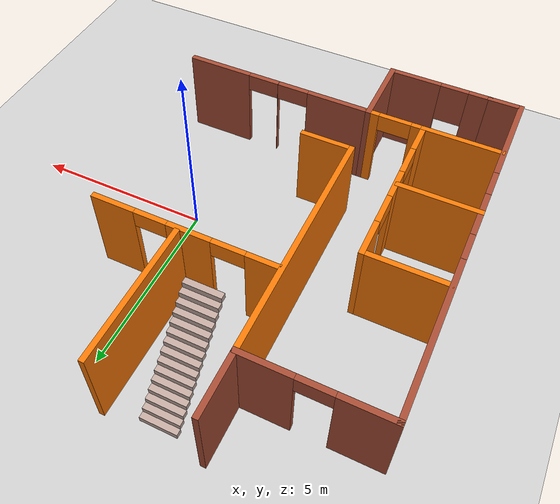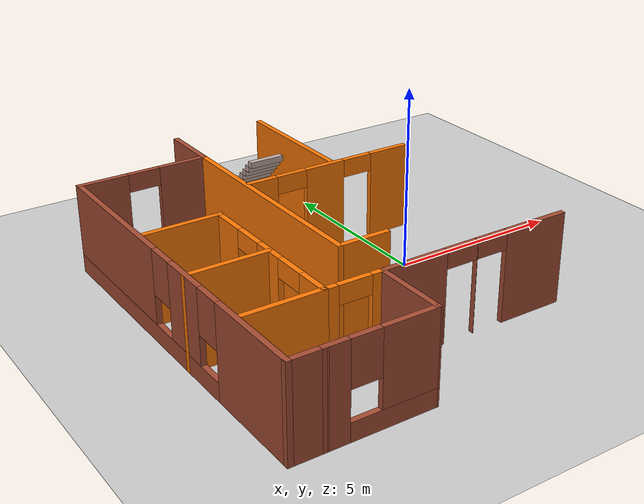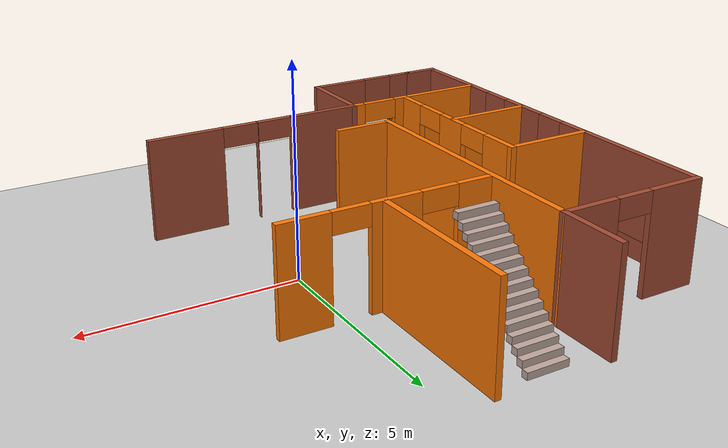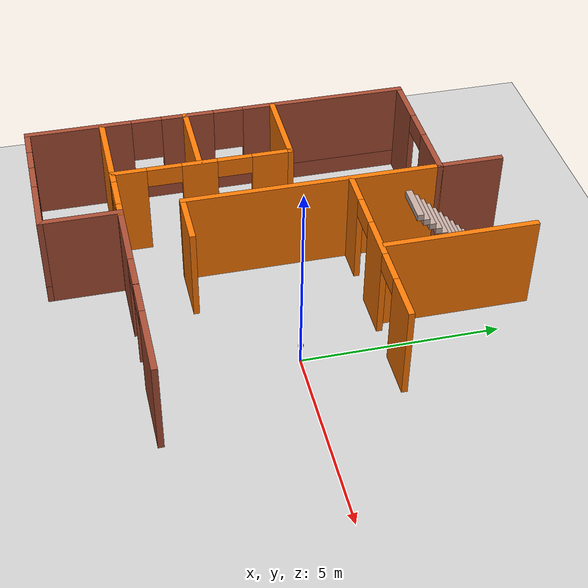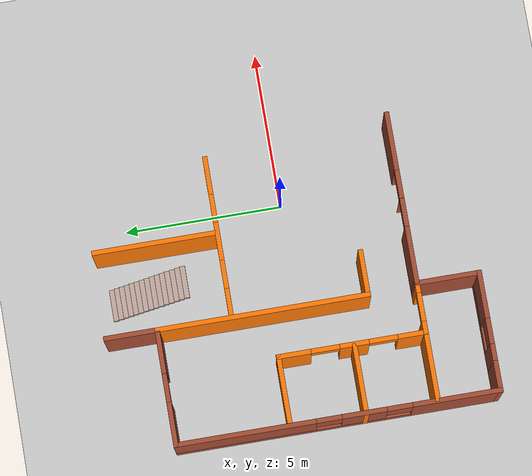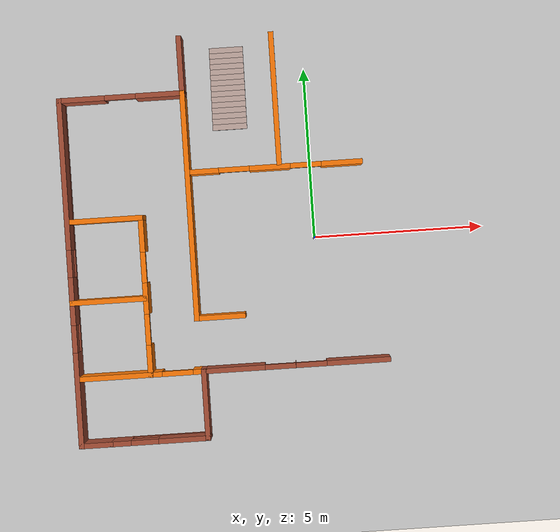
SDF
<sdf version="1.6">
 <world name="default">
  <include>
   <uri>file:///home/ubuntu/ros_ws/src/robot_sim/gazebo/kris_robot</uri>
   <name>kris_robot</name>
   <pose>0 0 0.5 0 -0 0</pose>
  </include>
  <model name="ground_plane">
   <static>1</static>
   <link name="link">
    <collision name="collision">
     <geometry><plane><normal>0 0 1</normal><size>100 100</size></plane></geometry>
     <surface><friction><ode><mu>100</mu><mu2>50</mu2></ode></friction></surface>
    </collision>
    <visual name="visual">
     <cast_shadows>0</cast_shadows>
     <geometry><plane><normal>0 0 1</normal><size>100 100</size></plane></geometry>
     <material>
      <script><uri>file://media/materials/scripts/gazebo.material</uri><name>Gazebo/Grey</name></script>
     </material>
    </visual>
   </link>
  </model>
  <model name="office">
   <pose>0.904802 0.213699 0 0 -0 0</pose>
   <link name="Stairs_0">
    <visual name="Stairs_0_Visual_0">
     <pose>-3.16704 5.51815 0.083333 0 -0 0</pose>
     <geometry><box><size>1 0.168037 0.166667</size></box></geometry>
     <material>
      <script><uri>file://media/materials/scripts/gazebo.material</uri><name>Gazebo/Grey</name></script>
      <ambient>0.760784 0.662745 0.627451 1</ambient>
     </material>
     <meta><layer>0</layer></meta>
    </visual>
    <collision name="Stairs_0_Collision_0">
     <geometry><box><size>1 0.168037 0.166667</size></box></geometry>
     <pose>-3.16704 5.51815 0.083333 0 -0 0</pose>
    </collision>
    <visual name="Stairs_0_Visual_1">
     <pose>-3.16704 5.35011 0.25 0 -0 0</pose>
     <geometry><box><size>1 0.168037 0.166667</size></box></geometry>
     <material>
      <script><uri>file://media/materials/scripts/gazebo.material</uri><name>Gazebo/Grey</name></script>
      <ambient>0.760784 0.662745 0.627451 1</ambient>
     </material>
     <meta><layer>0</layer></meta>
    </visual>
    <collision name="Stairs_0_Collision_1">
     <geometry><box><size>1 0.168037 0.166667</size></box></geometry>
     <pose>-3.16704 5.35011 0.25 0 -0 0</pose>
    </collision>
    <visual name="Stairs_0_Visual_2">
     <pose>-3.16704 5.18207 0.416667 0 -0 0</pose>
     <geometry><box><size>1 0.168037 0.166667</size></box></geometry>
     <material>
      <script><uri>file://media/materials/scripts/gazebo.material</uri><name>Gazebo/Grey</name></script>
      <ambient>0.760784 0.662745 0.627451 1</ambient>
     </material>
     <meta><layer>0</layer></meta>
    </visual>
    <collision name="Stairs_0_Collision_2">
     <geometry><box><size>1 0.168037 0.166667</size></box></geometry>
     <pose>-3.16704 5.18207 0.416667 0 -0 0</pose>
    </collision>
    <visual name="Stairs_0_Visual_3">
     <pose>-3.16704 5.01404 0.583333 0 -0 0</pose>
     <geometry><box><size>1 0.168037 0.166667</size></box></geometry>
     <material>
      <script><uri>file://media/materials/scripts/gazebo.material</uri><name>Gazebo/Grey</name></script>
      <ambient>0.760784 0.662745 0.627451 1</ambient>
     </material>
     <meta><layer>0</layer></meta>
    </visual>
    <collision name="Stairs_0_Collision_3">
     <geometry><box><size>1 0.168037 0.166667</size></box></geometry>
     <pose>-3.16704 5.01404 0.583333 0 -0 0</pose>
    </collision>
    <visual name="Stairs_0_Visual_4">
     <pose>-3.16704 4.846 0.75 0 -0 0</pose>
     <geometry><box><size>1 0.168037 0.166667</size></box></geometry>
     <material>
      <script><uri>file://media/materials/scripts/gazebo.material</uri><name>Gazebo/Grey</name></script>
      <ambient>0.760784 0.662745 0.627451 1</ambient>
     </material>
     <meta><layer>0</layer></meta>
    </visual>
    <collision name="Stairs_0_Collision_4">
     <geometry><box><size>1 0.168037 0.166667</size></box></geometry>
     <pose>-3.16704 4.846 0.75 0 -0 0</pose>
    </collision>
    <visual name="Stairs_0_Visual_5">
     <pose>-3.16704 4.67796 0.916667 0 -0 0</pose>
     <geometry><box><size>1 0.168037 0.166667</size></box></geometry>
     <material>
      <script><uri>file://media/materials/scripts/gazebo.material</uri><name>Gazebo/Grey</name></script>
      <ambient>0.760784 0.662745 0.627451 1</ambient>
     </material>
     <meta><layer>0</layer></meta>
    </visual>
    <collision name="Stairs_0_Collision_5">
     <geometry><box><size>1 0.168037 0.166667</size></box></geometry>
     <pose>-3.16704 4.67796 0.916667 0 -0 0</pose>
    </collision>
    <visual name="Stairs_0_Visual_6">
     <pose>-3.16704 4.50992 1.08333 0 -0 0</pose>
     <geometry><box><size>1 0.168037 0.166667</size></box></geometry>
     <material>
      <script><uri>file://media/materials/scripts/gazebo.material</uri><name>Gazebo/Grey</name></script>
      <ambient>0.760784 0.662745 0.627451 1</ambient>
     </material>
     <meta><layer>0</layer></meta>
    </visual>
    <collision name="Stairs_0_Collision_6">
     <geometry><box><size>1 0.168037 0.166667</size></box></geometry>
     <pose>-3.16704 4.50992 1.08333 0 -0 0</pose>
    </collision>
    <visual name="Stairs_0_Visual_7">
     <pose>-3.16704 4.34189 1.25 0 -0 0</pose>
     <geometry><box><size>1 0.168037 0.166667</size></box></geometry>
     <material>
      <script><uri>file://media/materials/scripts/gazebo.material</uri><name>Gazebo/Grey</name></script>
      <ambient>0.760784 0.662745 0.627451 1</ambient>
     </material>
     <meta><layer>0</layer></meta>
    </visual>
    <collision name="Stairs_0_Collision_7">
     <geometry><box><size>1 0.168037 0.166667</size></box></geometry>
     <pose>-3.16704 4.34189 1.25 0 -0 0</pose>
    </collision>
    <visual name="Stairs_0_Visual_8">
     <pose>-3.16704 4.17385 1.41667 0 -0 0</pose>
     <geometry><box><size>1 0.168037 0.166667</size></box></geometry>
     <material>
      <script><uri>file://media/materials/scripts/gazebo.material</uri><name>Gazebo/Grey</name></script>
      <ambient>0.760784 0.662745 0.627451 1</ambient>
     </material>
     <meta><layer>0</layer></meta>
    </visual>
    <collision name="Stairs_0_Collision_8">
     <geometry><box><size>1 0.168037 0.166667</size></box></geometry>
     <pose>-3.16704 4.17385 1.41667 0 -0 0</pose>
    </collision>
    <visual name="Stairs_0_Visual_9">
     <pose>-3.16704 4.00581 1.58333 0 -0 0</pose>
     <geometry><box><size>1 0.168037 0.166667</size></box></geometry>
     <material>
      <script><uri>file://media/materials/scripts/gazebo.material</uri><name>Gazebo/Grey</name></script>
      <ambient>0.760784 0.662745 0.627451 1</ambient>
     </material>
     <meta><layer>0</layer></meta>
    </visual>
    <collision name="Stairs_0_Collision_9">
     <geometry><box><size>1 0.168037 0.166667</size></box></geometry>
     <pose>-3.16704 4.00581 1.58333 0 -0 0</pose>
    </collision>
    <visual name="Stairs_0_Visual_10">
     <pose>-3.16704 3.83778 1.75 0 -0 0</pose>
     <geometry><box><size>1 0.168037 0.166667</size></box></geometry>
     <material>
      <script><uri>file://media/materials/scripts/gazebo.material</uri><name>Gazebo/Grey</name></script>
      <ambient>0.760784 0.662745 0.627451 1</ambient>
     </material>
     <meta><layer>0</layer></meta>
    </visual>
    <collision name="Stairs_0_Collision_10">
     <geometry><box><size>1 0.168037 0.166667</size></box></geometry>
     <pose>-3.16704 3.83778 1.75 0 -0 0</pose>
    </collision>
    <visual name="Stairs_0_Visual_11">
     <pose>-3.16704 3.66974 1.91667 0 -0 0</pose>
     <geometry><box><size>1 0.168037 0.166667</size></box></geometry>
     <material>
      <script><uri>file://media/materials/scripts/gazebo.material</uri><name>Gazebo/Grey</name></script>
      <ambient>0.760784 0.662745 0.627451 1</ambient>
     </material>
     <meta><layer>0</layer></meta>
    </visual>
    <collision name="Stairs_0_Collision_11">
     <geometry><box><size>1 0.168037 0.166667</size></box></geometry>
     <pose>-3.16704 3.66974 1.91667 0 -0 0</pose>
    </collision>
    <visual name="Stairs_0_Visual_12">
     <pose>-3.16704 3.5017 2.08333 0 -0 0</pose>
     <geometry><box><size>1 0.168037 0.166667</size></box></geometry>
     <material>
      <script><uri>file://media/materials/scripts/gazebo.material</uri><name>Gazebo/Grey</name></script>
      <ambient>0.760784 0.662745 0.627451 1</ambient>
     </material>
     <meta><layer>0</layer></meta>
    </visual>
    <collision name="Stairs_0_Collision_12">
     <geometry><box><size>1 0.168037 0.166667</size></box></geometry>
     <pose>-3.16704 3.5017 2.08333 0 -0 0</pose>
    </collision>
    <visual name="Stairs_0_Visual_13">
     <pose>-3.16704 3.33366 2.25 0 -0 0</pose>
     <geometry><box><size>1 0.168037 0.166667</size></box></geometry>
     <material>
      <script><uri>file://media/materials/scripts/gazebo.material</uri><name>Gazebo/Grey</name></script>
      <ambient>0.760784 0.662745 0.627451 1</ambient>
     </material>
     <meta><layer>0</layer></meta>
    </visual>
    <collision name="Stairs_0_Collision_13">
     <geometry><box><size>1 0.168037 0.166667</size></box></geometry>
     <pose>-3.16704 3.33366 2.25 0 -0 0</pose>
    </collision>
    <visual name="Stairs_0_Visual_14">
     <pose>-3.16704 3.16563 2.41667 0 -0 0</pose>
     <geometry><box><size>1 0.168037 0.166667</size></box></geometry>
     <material>
      <script><uri>file://media/materials/scripts/gazebo.material</uri><name>Gazebo/Grey</name></script>
      <ambient>0.760784 0.662745 0.627451 1</ambient>
     </material>
     <meta><layer>0</layer></meta>
    </visual>
    <collision name="Stairs_0_Collision_14">
     <geometry><box><size>1 0.168037 0.166667</size></box></geometry>
     <pose>-3.16704 3.16563 2.41667 0 -0 0</pose>
    </collision>
   </link>
   <link name="Wall_10">
    <collision name="Wall_10_Collision">
     <geometry><box><size>1 0.15 2.5</size></box></geometry>
     <pose>0 0 1.25 0 -0 0</pose>
    </collision>
    <visual name="Wall_10_Visual">
     <pose>0 0 1.25 0 -0 0</pose>
     <geometry><box><size>1 0.15 2.5</size></box></geometry>
     <material>
      <script><uri>file://media/materials/scripts/gazebo.material</uri><name>Gazebo/Bricks</name></script>
      <ambient>1 1 1 1</ambient>
     </material>
     <meta><layer>0</layer></meta>
    </visual>
    <pose>-7.67457 -5.85749 0 0 -0 3.14159</pose>
   </link>
   <link name="Wall_11">
    <pose>-8.09957 -0.807493 0 0 -0 1.5708</pose>
    <visual name="Wall_11_Visual_0">
     <pose>-3.7208 0 1.25 0 -0 0</pose>
     <geometry><box><size>2.8084 0.15 2.5</size></box></geometry>
     <material>
      <script><uri>file://media/materials/scripts/gazebo.material</uri><name>Gazebo/Bricks</name></script>
      <ambient>1 1 1 1</ambient>
     </material>
     <meta><layer>0</layer></meta>
    </visual>
    <collision name="Wall_11_Collision_0">
     <geometry><box><size>2.8084 0.15 2.5</size></box></geometry>
     <pose>-3.7208 0 1.25 0 -0 0</pose>
    </collision>
    <visual name="Wall_11_Visual_1">
     <pose>1.4042 0 0.25 0 -0 0</pose>
     <geometry><box><size>7.4416 0.15 0.5</size></box></geometry>
     <material>
      <script><uri>file://media/materials/scripts/gazebo.material</uri><name>Gazebo/Bricks</name></script>
      <ambient>1 1 1 1</ambient>
     </material>
     <meta><layer>0</layer></meta>
    </visual>
    <collision name="Wall_11_Collision_1">
     <geometry><box><size>7.4416 0.15 0.5</size></box></geometry>
     <pose>1.4042 0 0.25 0 -0 0</pose>
    </collision>
    <visual name="Wall_11_Visual_2">
     <pose>-0.81473 0 1.5 0 -0 0</pose>
     <geometry><box><size>1.40375 0.15 2</size></box></geometry>
     <material>
      <script><uri>file://media/materials/scripts/gazebo.material</uri><name>Gazebo/Bricks</name></script>
      <ambient>1 1 1 1</ambient>
     </material>
     <meta><layer>0</layer></meta>
    </visual>
    <collision name="Wall_11_Collision_2">
     <geometry><box><size>1.40375 0.15 2</size></box></geometry>
     <pose>-0.81473 0 1.5 0 -0 0</pose>
    </collision>
    <visual name="Wall_11_Visual_3">
     <pose>2.90607 0 1.5 0 -0 0</pose>
     <geometry><box><size>4.43786 0.15 2</size></box></geometry>
     <material>
      <script><uri>file://media/materials/scripts/gazebo.material</uri><name>Gazebo/Bricks</name></script>
      <ambient>1 1 1 1</ambient>
     </material>
     <meta><layer>0</layer></meta>
    </visual>
    <collision name="Wall_11_Collision_3">
     <geometry><box><size>4.43786 0.15 2</size></box></geometry>
     <pose>2.90607 0 1.5 0 -0 0</pose>
    </collision>
    <visual name="Wall_11_Visual_4">
     <pose>-1.9166 0 1.9 0 -0 0</pose>
     <geometry><box><size>0.8 0.15 1.2</size></box></geometry>
     <material>
      <script><uri>file://media/materials/scripts/gazebo.material</uri><name>Gazebo/Bricks</name></script>
      <ambient>1 1 1 1</ambient>
     </material>
     <meta><layer>0</layer></meta>
    </visual>
    <collision name="Wall_11_Collision_4">
     <geometry><box><size>0.8 0.15 1.2</size></box></geometry>
     <pose>-1.9166 0 1.9 0 -0 0</pose>
    </collision>
    <visual name="Wall_11_Visual_5">
     <pose>0.287144 0 1.9 0 -0 0</pose>
     <geometry><box><size>0.8 0.15 1.2</size></box></geometry>
     <material>
      <script><uri>file://media/materials/scripts/gazebo.material</uri><name>Gazebo/Bricks</name></script>
      <ambient>1 1 1 1</ambient>
     </material>
     <meta><layer>0</layer></meta>
    </visual>
    <collision name="Wall_11_Collision_5">
     <geometry><box><size>0.8 0.15 1.2</size></box></geometry>
     <pose>0.287144 0 1.9 0 -0 0</pose>
    </collision>
   </link>
   <link name="Wall_12">
    <pose>-6.29957 4.24251 0 0 -0 0</pose>
    <visual name="Wall_12_Visual_0">
     <pose>-1.17034 0 1.25 0 -0 0</pose>
     <geometry><box><size>1.40932 0.15 2.5</size></box></geometry>
     <material>
      <script><uri>file://media/materials/scripts/gazebo.material</uri><name>Gazebo/Bricks</name></script>
      <ambient>1 1 1 1</ambient>
     </material>
     <meta><layer>0</layer></meta>
    </visual>
    <collision name="Wall_12_Collision_0">
     <geometry><box><size>1.40932 0.15 2.5</size></box></geometry>
     <pose>-1.17034 0 1.25 0 -0 0</pose>
    </collision>
    <visual name="Wall_12_Visual_1">
     <pose>1.15466 0 1.25 0 -0 0</pose>
     <geometry><box><size>1.44068 0.15 2.5</size></box></geometry>
     <material>
      <script><uri>file://media/materials/scripts/gazebo.material</uri><name>Gazebo/Bricks</name></script>
      <ambient>1 1 1 1</ambient>
     </material>
     <meta><layer>0</layer></meta>
    </visual>
    <collision name="Wall_12_Collision_1">
     <geometry><box><size>1.44068 0.15 2.5</size></box></geometry>
     <pose>1.15466 0 1.25 0 -0 0</pose>
    </collision>
    <visual name="Wall_12_Visual_2">
     <pose>-0.015683 0 2.25 0 -0 0</pose>
     <geometry><box><size>0.9 0.15 0.5</size></box></geometry>
     <material>
      <script><uri>file://media/materials/scripts/gazebo.material</uri><name>Gazebo/Bricks</name></script>
      <ambient>1 1 1 1</ambient>
     </material>
     <meta><layer>0</layer></meta>
    </visual>
    <collision name="Wall_12_Collision_2">
     <geometry><box><size>0.9 0.15 0.5</size></box></geometry>
     <pose>-0.015683 0 2.25 0 -0 0</pose>
    </collision>
   </link>
   <link name="Wall_13">
    <collision name="Wall_13_Collision">
     <geometry><box><size>1.75 0.15 2.5</size></box></geometry>
     <pose>0 0 1.25 0 -0 0</pose>
    </collision>
    <visual name="Wall_13_Visual">
     <pose>0 0 1.25 0 -0 0</pose>
     <geometry><box><size>1.75 0.15 2.5</size></box></geometry>
     <material>
      <script><uri>file://media/materials/scripts/gazebo.material</uri><name>Gazebo/Bricks</name></script>
      <ambient>1 1 1 1</ambient>
     </material>
     <meta><layer>0</layer></meta>
    </visual>
    <pose>-4.49957 5.04251 0 0 -0 1.5708</pose>
   </link>
   <link name="Wall_23">
    <pose>-1.67457 -3.90749 0 0 -0 3.14159</pose>
    <visual name="Wall_23_Visual_0">
     <pose>-1.81572 0 1.25 0 -0 0</pose>
     <geometry><box><size>1.86857 0.15 2.5</size></box></geometry>
     <material>
      <script><uri>file://media/materials/scripts/gazebo.material</uri><name>Gazebo/Bricks</name></script>
      <ambient>1 1 1 1</ambient>
     </material>
     <meta><layer>0</layer></meta>
    </visual>
    <collision name="Wall_23_Collision_0">
     <geometry><box><size>1.86857 0.15 2.5</size></box></geometry>
     <pose>-1.81572 0 1.25 0 -0 0</pose>
    </collision>
    <visual name="Wall_23_Visual_1">
     <pose>0.023306 0 1.25 0 -0 0</pose>
     <geometry><box><size>0.009483 0.15 2.5</size></box></geometry>
     <material>
      <script><uri>file://media/materials/scripts/gazebo.material</uri><name>Gazebo/Bricks</name></script>
      <ambient>1 1 1 1</ambient>
     </material>
     <meta><layer>0</layer></meta>
    </visual>
    <collision name="Wall_23_Collision_1">
     <geometry><box><size>0.009483 0.15 2.5</size></box></geometry>
     <pose>0.023306 0 1.25 0 -0 0</pose>
    </collision>
    <visual name="Wall_23_Visual_2">
     <pose>1.83902 0 1.25 0 -0 0</pose>
     <geometry><box><size>1.82195 0.15 2.5</size></box></geometry>
     <material>
      <script><uri>file://media/materials/scripts/gazebo.material</uri><name>Gazebo/Bricks</name></script>
      <ambient>1 1 1 1</ambient>
     </material>
     <meta><layer>0</layer></meta>
    </visual>
    <collision name="Wall_23_Collision_2">
     <geometry><box><size>1.82195 0.15 2.5</size></box></geometry>
     <pose>1.83902 0 1.25 0 -0 0</pose>
    </collision>
    <visual name="Wall_23_Visual_3">
     <pose>-0.431435 0 2.25 0 -0 0</pose>
     <geometry><box><size>0.9 0.15 0.5</size></box></geometry>
     <material>
      <script><uri>file://media/materials/scripts/gazebo.material</uri><name>Gazebo/Bricks</name></script>
      <ambient>1 1 1 1</ambient>
     </material>
     <meta><layer>0</layer></meta>
    </visual>
    <collision name="Wall_23_Collision_3">
     <geometry><box><size>0.9 0.15 0.5</size></box></geometry>
     <pose>-0.431435 0 2.25 0 -0 0</pose>
    </collision>
    <visual name="Wall_23_Visual_4">
     <pose>0.478048 0 2.25 0 -0 0</pose>
     <geometry><box><size>0.9 0.15 0.5</size></box></geometry>
     <material>
      <script><uri>file://media/materials/scripts/gazebo.material</uri><name>Gazebo/Bricks</name></script>
      <ambient>1 1 1 1</ambient>
     </material>
     <meta><layer>0</layer></meta>
    </visual>
    <collision name="Wall_23_Collision_4">
     <geometry><box><size>0.9 0.15 0.5</size></box></geometry>
     <pose>0.478048 0 2.25 0 -0 0</pose>
    </collision>
   </link>
   <link name="Wall_25">
    <pose>-5.14957 -3.90749 0 0 -0 3.14159</pose>
    <visual name="Wall_25_Visual_0">
     <pose>-0.656831 0 1.25 0 -0 0</pose>
     <geometry><box><size>0.436339 0.15 2.5</size></box></geometry>
     <material>
      <script><uri>file://media/materials/scripts/gazebo.material</uri><name>Gazebo/Grey</name></script>
      <ambient>0.996078 0.47451 0.0196078 1</ambient>
     </material>
     <meta><layer>0</layer></meta>
    </visual>
    <collision name="Wall_25_Collision_0">
     <geometry><box><size>0.436339 0.15 2.5</size></box></geometry>
     <pose>-0.656831 0 1.25 0 -0 0</pose>
    </collision>
    <visual name="Wall_25_Visual_1">
     <pose>0.668169 0 1.25 0 -0 0</pose>
     <geometry><box><size>0.413661 0.15 2.5</size></box></geometry>
     <material>
      <script><uri>file://media/materials/scripts/gazebo.material</uri><name>Gazebo/Grey</name></script>
      <ambient>0.996078 0.47451 0.0196078 1</ambient>
     </material>
     <meta><layer>0</layer></meta>
    </visual>
    <collision name="Wall_25_Collision_1">
     <geometry><box><size>0.413661 0.15 2.5</size></box></geometry>
     <pose>0.668169 0 1.25 0 -0 0</pose>
    </collision>
    <visual name="Wall_25_Visual_2">
     <pose>0.011339 0 2.25 0 -0 0</pose>
     <geometry><box><size>0.9 0.15 0.5</size></box></geometry>
     <material>
      <script><uri>file://media/materials/scripts/gazebo.material</uri><name>Gazebo/Grey</name></script>
      <ambient>0.996078 0.47451 0.0196078 1</ambient>
     </material>
     <meta><layer>0</layer></meta>
    </visual>
    <collision name="Wall_25_Collision_2">
     <geometry><box><size>0.9 0.15 0.5</size></box></geometry>
     <pose>0.011339 0 2.25 0 -0 0</pose>
    </collision>
   </link>
   <link name="Wall_26">
    <pose>-5.94957 -1.60749 0 0 -0 1.5708</pose>
    <visual name="Wall_26_Visual_0">
     <pose>-1.90084 0 1.25 0 -0 0</pose>
     <geometry><box><size>0.948317 0.15 2.5</size></box></geometry>
     <material>
      <script><uri>file://media/materials/scripts/gazebo.material</uri><name>Gazebo/Grey</name></script>
      <ambient>0.996078 0.47451 0.0196078 1</ambient>
     </material>
     <meta><layer>0</layer></meta>
    </visual>
    <collision name="Wall_26_Collision_0">
     <geometry><box><size>0.948317 0.15 2.5</size></box></geometry>
     <pose>-1.90084 0 1.25 0 -0 0</pose>
    </collision>
    <visual name="Wall_26_Visual_1">
     <pose>-0.0672 0 1.25 0 -0 0</pose>
     <geometry><box><size>0.918967 0.15 2.5</size></box></geometry>
     <material>
      <script><uri>file://media/materials/scripts/gazebo.material</uri><name>Gazebo/Grey</name></script>
      <ambient>0.996078 0.47451 0.0196078 1</ambient>
     </material>
     <meta><layer>0</layer></meta>
    </visual>
    <collision name="Wall_26_Collision_1">
     <geometry><box><size>0.918967 0.15 2.5</size></box></geometry>
     <pose>-0.0672 0 1.25 0 -0 0</pose>
    </collision>
    <visual name="Wall_26_Visual_2">
     <pose>1.83364 0 1.25 0 -0 0</pose>
     <geometry><box><size>1.08272 0.15 2.5</size></box></geometry>
     <material>
      <script><uri>file://media/materials/scripts/gazebo.material</uri><name>Gazebo/Grey</name></script>
      <ambient>0.996078 0.47451 0.0196078 1</ambient>
     </material>
     <meta><layer>0</layer></meta>
    </visual>
    <collision name="Wall_26_Collision_2">
     <geometry><box><size>1.08272 0.15 2.5</size></box></geometry>
     <pose>1.83364 0 1.25 0 -0 0</pose>
    </collision>
    <visual name="Wall_26_Visual_3">
     <pose>-0.976683 0 2.25 0 -0 0</pose>
     <geometry><box><size>0.9 0.15 0.5</size></box></geometry>
     <material>
      <script><uri>file://media/materials/scripts/gazebo.material</uri><name>Gazebo/Grey</name></script>
      <ambient>0.996078 0.47451 0.0196078 1</ambient>
     </material>
     <meta><layer>0</layer></meta>
    </visual>
    <collision name="Wall_26_Collision_3">
     <geometry><box><size>0.9 0.15 0.5</size></box></geometry>
     <pose>-0.976683 0 2.25 0 -0 0</pose>
    </collision>
    <visual name="Wall_26_Visual_4">
     <pose>0.842283 0 2.25 0 -0 0</pose>
     <geometry><box><size>0.9 0.15 0.5</size></box></geometry>
     <material>
      <script><uri>file://media/materials/scripts/gazebo.material</uri><name>Gazebo/Grey</name></script>
      <ambient>0.996078 0.47451 0.0196078 1</ambient>
     </material>
     <meta><layer>0</layer></meta>
    </visual>
    <collision name="Wall_26_Collision_4">
     <geometry><box><size>0.9 0.15 0.5</size></box></geometry>
     <pose>0.842283 0 2.25 0 -0 0</pose>
    </collision>
   </link>
   <link name="Wall_29">
    <collision name="Wall_29_Collision">
     <geometry><box><size>2.25 0.15 2.5</size></box></geometry>
     <pose>0 0 1.25 0 -0 0</pose>
    </collision>
    <visual name="Wall_29_Visual">
     <pose>0 0 1.25 0 -0 0</pose>
     <geometry><box><size>2.25 0.15 2.5</size></box></geometry>
     <material>
      <script><uri>file://media/materials/scripts/gazebo.material</uri><name>Gazebo/Grey</name></script>
      <ambient>0.996078 0.47451 0.0196078 1</ambient>
     </material>
     <meta><layer>0</layer></meta>
    </visual>
    <pose>-6.99957 0.692507 0 0 -0 3.14159</pose>
   </link>
   <link name="Wall_31">
    <collision name="Wall_31_Collision">
     <geometry><box><size>6.75 0.15 2.5</size></box></geometry>
     <pose>0 0 1.25 0 -0 0</pose>
    </collision>
    <visual name="Wall_31_Visual">
     <pose>0 0 1.25 0 -0 0</pose>
     <geometry><box><size>6.75 0.15 2.5</size></box></geometry>
     <material>
      <script><uri>file://media/materials/scripts/gazebo.material</uri><name>Gazebo/Grey</name></script>
      <ambient>0.996078 0.47451 0.0196078 1</ambient>
     </material>
     <meta><layer>0</layer></meta>
    </visual>
    <pose>-4.49978 0.942713 0 0 0 -1.57086</pose>
   </link>
   <link name="Wall_32">
    <collision name="Wall_32_Collision">
     <geometry><box><size>1.5 0.15 2.5</size></box></geometry>
     <pose>0 0 1.25 0 -0 0</pose>
    </collision>
    <visual name="Wall_32_Visual">
     <pose>0 0 1.25 0 -0 0</pose>
     <geometry><box><size>1.5 0.15 2.5</size></box></geometry>
     <material>
      <script><uri>file://media/materials/scripts/gazebo.material</uri><name>Gazebo/Grey</name></script>
      <ambient>0.996078 0.47451 0.0196078 1</ambient>
     </material>
     <meta><layer>0</layer></meta>
    </visual>
    <pose>-3.82498 -2.35708 0 0 -0 0</pose>
   </link>
   <link name="Wall_37">
    <pose>-1.92098 1.91592 0 0 -0 3.14159</pose>
    <visual name="Wall_37_Visual_0">
     <pose>-1.94386 0 1.25 0 -0 0</pose>
     <geometry><box><size>1.21227 0.15 2.5</size></box></geometry>
     <material>
      <script><uri>file://media/materials/scripts/gazebo.material</uri><name>Gazebo/Grey</name></script>
      <ambient>0.996078 0.47451 0.0196078 1</ambient>
     </material>
     <meta><layer>0</layer></meta>
    </visual>
    <collision name="Wall_37_Collision_0">
     <geometry><box><size>1.21227 0.15 2.5</size></box></geometry>
     <pose>-1.94386 0 1.25 0 -0 0</pose>
    </collision>
    <visual name="Wall_37_Visual_1">
     <pose>0.161675 0 1.25 0 -0 0</pose>
     <geometry><box><size>1.19881 0.15 2.5</size></box></geometry>
     <material>
      <script><uri>file://media/materials/scripts/gazebo.material</uri><name>Gazebo/Grey</name></script>
      <ambient>0.996078 0.47451 0.0196078 1</ambient>
     </material>
     <meta><layer>0</layer></meta>
    </visual>
    <collision name="Wall_37_Collision_1">
     <geometry><box><size>1.19881 0.15 2.5</size></box></geometry>
     <pose>0.161675 0 1.25 0 -0 0</pose>
    </collision>
    <visual name="Wall_37_Visual_2">
     <pose>2.10554 0 1.25 0 -0 0</pose>
     <geometry><box><size>0.888921 0.15 2.5</size></box></geometry>
     <material>
      <script><uri>file://media/materials/scripts/gazebo.material</uri><name>Gazebo/Grey</name></script>
      <ambient>0.996078 0.47451 0.0196078 1</ambient>
     </material>
     <meta><layer>0</layer></meta>
    </visual>
    <collision name="Wall_37_Collision_2">
     <geometry><box><size>0.888921 0.15 2.5</size></box></geometry>
     <pose>2.10554 0 1.25 0 -0 0</pose>
    </collision>
    <visual name="Wall_37_Visual_3">
     <pose>-0.887729 0 2.25 0 -0 0</pose>
     <geometry><box><size>0.9 0.15 0.5</size></box></geometry>
     <material>
      <script><uri>file://media/materials/scripts/gazebo.material</uri><name>Gazebo/Grey</name></script>
      <ambient>0.996078 0.47451 0.0196078 1</ambient>
     </material>
     <meta><layer>0</layer></meta>
    </visual>
    <collision name="Wall_37_Collision_3">
     <geometry><box><size>0.9 0.15 0.5</size></box></geometry>
     <pose>-0.887729 0 2.25 0 -0 0</pose>
    </collision>
    <visual name="Wall_37_Visual_4">
     <pose>1.21108 0 2.25 0 -0 0</pose>
     <geometry><box><size>0.9 0.15 0.5</size></box></geometry>
     <material>
      <script><uri>file://media/materials/scripts/gazebo.material</uri><name>Gazebo/Grey</name></script>
      <ambient>0.996078 0.47451 0.0196078 1</ambient>
     </material>
     <meta><layer>0</layer></meta>
    </visual>
    <collision name="Wall_37_Collision_4">
     <geometry><box><size>0.9 0.15 0.5</size></box></geometry>
     <pose>1.21108 0 2.25 0 -0 0</pose>
    </collision>
   </link>
   <link name="Wall_46">
    <collision name="Wall_46_Collision">
     <geometry><box><size>3.9 0.15 2.5</size></box></geometry>
     <pose>0 0 1.25 0 -0 0</pose>
    </collision>
    <visual name="Wall_46_Visual">
     <pose>0 0 1.25 0 -0 0</pose>
     <geometry><box><size>3.9 0.15 2.5</size></box></geometry>
     <material>
      <script><uri>file://media/materials/scripts/gazebo.material</uri><name>Gazebo/Grey</name></script>
      <ambient>0.996078 0.47451 0.0196078 1</ambient>
     </material>
     <meta><layer>0</layer></meta>
    </visual>
    <pose>-1.80298 3.90792 0 0 -0 1.5708</pose>
   </link>
   <link name="Wall_6">
    <pose>-5.82478 -5.85729 0 0 -0 0.000145</pose>
    <visual name="Wall_6_Visual_0">
     <pose>-1.16026 0 1.25 0 -0 0</pose>
     <geometry><box><size>0.679476 0.15 2.5</size></box></geometry>
     <material>
      <script><uri>file://media/materials/scripts/gazebo.material</uri><name>Gazebo/Bricks</name></script>
      <ambient>1 1 1 1</ambient>
     </material>
     <meta><layer>0</layer></meta>
    </visual>
    <collision name="Wall_6_Collision_0">
     <geometry><box><size>0.679476 0.15 2.5</size></box></geometry>
     <pose>-1.16026 0 1.25 0 -0 0</pose>
    </collision>
    <visual name="Wall_6_Visual_1">
     <pose>0.339738 0 0.25 0 -0 0</pose>
     <geometry><box><size>2.32052 0.15 0.5</size></box></geometry>
     <material>
      <script><uri>file://media/materials/scripts/gazebo.material</uri><name>Gazebo/Bricks</name></script>
      <ambient>1 1 1 1</ambient>
     </material>
     <meta><layer>0</layer></meta>
    </visual>
    <collision name="Wall_6_Collision_1">
     <geometry><box><size>2.32052 0.15 0.5</size></box></geometry>
     <pose>0.339738 0 0.25 0 -0 0</pose>
    </collision>
    <visual name="Wall_6_Visual_2">
     <pose>0.739738 0 1.5 0 -0 0</pose>
     <geometry><box><size>1.52052 0.15 2</size></box></geometry>
     <material>
      <script><uri>file://media/materials/scripts/gazebo.material</uri><name>Gazebo/Bricks</name></script>
      <ambient>1 1 1 1</ambient>
     </material>
     <meta><layer>0</layer></meta>
    </visual>
    <collision name="Wall_6_Collision_2">
     <geometry><box><size>1.52052 0.15 2</size></box></geometry>
     <pose>0.739738 0 1.5 0 -0 0</pose>
    </collision>
    <visual name="Wall_6_Visual_3">
     <pose>-0.420524 0 1.9 0 -0 0</pose>
     <geometry><box><size>0.8 0.15 1.2</size></box></geometry>
     <material>
      <script><uri>file://media/materials/scripts/gazebo.material</uri><name>Gazebo/Bricks</name></script>
      <ambient>1 1 1 1</ambient>
     </material>
     <meta><layer>0</layer></meta>
    </visual>
    <collision name="Wall_6_Collision_3">
     <geometry><box><size>0.8 0.15 1.2</size></box></geometry>
     <pose>-0.420524 0 1.9 0 -0 0</pose>
    </collision>
   </link>
   <link name="Wall_60">
    <collision name="Wall_60_Collision">
     <geometry><box><size>2.25 0.15 2.5</size></box></geometry>
     <pose>0 0 1.25 0 -0 0</pose>
    </collision>
    <visual name="Wall_60_Visual">
     <pose>0 0 1.25 0 -0 0</pose>
     <geometry><box><size>2.25 0.15 2.5</size></box></geometry>
     <material>
      <script><uri>file://media/materials/scripts/gazebo.material</uri><name>Gazebo/Grey</name></script>
      <ambient>0.996078 0.47451 0.0196078 1</ambient>
     </material>
     <meta><layer>0</layer></meta>
    </visual>
    <pose>-6.99957 -3.90749 0 0 -0 3.14159</pose>
   </link>
   <link name="Wall_7">
    <collision name="Wall_7_Collision">
     <geometry><box><size>2.1 0.15 2.5</size></box></geometry>
     <pose>0 0 1.25 0 -0 0</pose>
    </collision>
    <visual name="Wall_7_Visual">
     <pose>0 0 1.25 0 -0 0</pose>
     <geometry><box><size>2.1 0.15 2.5</size></box></geometry>
     <material>
      <script><uri>file://media/materials/scripts/gazebo.material</uri><name>Gazebo/Bricks</name></script>
      <ambient>1 1 1 1</ambient>
     </material>
     <meta><layer>0</layer></meta>
    </visual>
    <pose>-4.39998 -4.88208 0 0 -0 1.5708</pose>
   </link>
   <link name="Wall_73">
    <collision name="Wall_73_Collision">
     <geometry><box><size>2.25 0.15 2.5</size></box></geometry>
     <pose>0 0 1.25 0 -0 0</pose>
    </collision>
    <visual name="Wall_73_Visual">
     <pose>0 0 1.25 0 -0 0</pose>
     <geometry><box><size>2.25 0.15 2.5</size></box></geometry>
     <material>
      <script><uri>file://media/materials/scripts/gazebo.material</uri><name>Gazebo/Grey</name></script>
      <ambient>0.996078 0.47451 0.0196078 1</ambient>
     </material>
     <meta><layer>0</layer></meta>
    </visual>
    <pose>-7.05043 -1.67469 0 0 -0 3.14159</pose>
   </link>
   <static>1</static>
  </model>
 </world>
</sdf>
